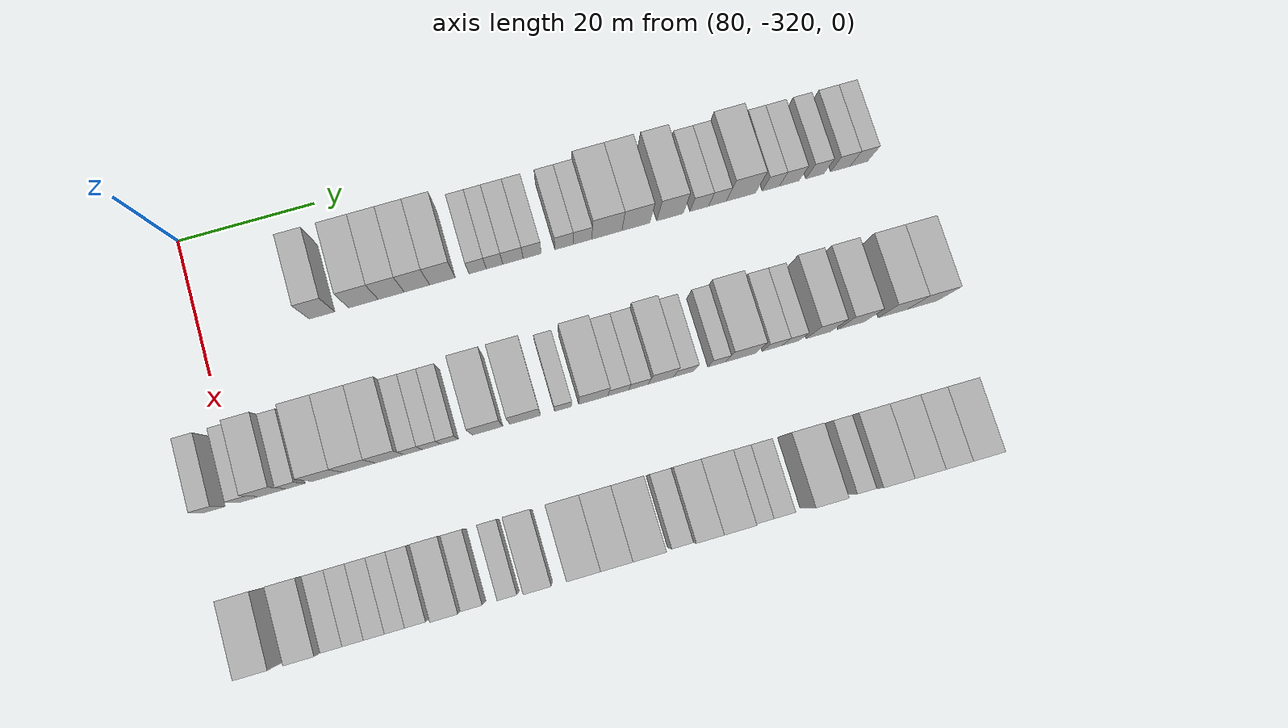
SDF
<sdf version="1.6">
 <world name="default">
  <model name="building_553">
   <static>1</static>
   <pose>91.0000 -302.9431 0 0.000000 0.000000 0.000000</pose>
   <link name="link">
    <pose>0 0 4.50 0 0 0</pose>
    <collision name="collision"><geometry><box><size>10.0000 3.6772 9.0000</size></box></geometry></collision>
    <visual name="visual">
     <cast_shadows>0</cast_shadows>
     <geometry><box><size>10.0000 3.6772 9.0000</size></box></geometry>
     <material>
      <script>
       <uri>model://HANNAS_wall/materials/scripts</uri>
       <uri>model://HANNAS_wall/materials/textures</uri>
       <name>vrc/HANNAS_wall</name>
      </script>
     </material>
    </visual>
   </link>
  </model>
  <model name="building_554">
   <static>1</static>
   <pose>91.0000 -296.9664 0 0.000000 0.000000 0.000000</pose>
   <link name="link">
    <pose>0 0 4.50 0 0 0</pose>
    <collision name="collision"><geometry><box><size>10.0000 4.2761 9.0000</size></box></geometry></collision>
    <visual name="visual">
     <cast_shadows>0</cast_shadows>
     <geometry><box><size>10.0000 4.2761 9.0000</size></box></geometry>
     <material>
      <script>
       <uri>model://HANNAS_wall/materials/scripts</uri>
       <uri>model://HANNAS_wall/materials/textures</uri>
       <name>vrc/HANNAS_wall</name>
      </script>
     </material>
    </visual>
   </link>
  </model>
  <model name="building_555">
   <static>1</static>
   <pose>91.0000 -292.9398 0 0.000000 0.000000 0.000000</pose>
   <link name="link">
    <pose>0 0 4.50 0 0 0</pose>
    <collision name="collision"><geometry><box><size>10.0000 3.7770 9.0000</size></box></geometry></collision>
    <visual name="visual">
     <cast_shadows>0</cast_shadows>
     <geometry><box><size>10.0000 3.7770 9.0000</size></box></geometry>
     <material>
      <script>
       <uri>model://HANNAS_wall/materials/scripts</uri>
       <uri>model://HANNAS_wall/materials/textures</uri>
       <name>vrc/HANNAS_wall</name>
      </script>
     </material>
    </visual>
   </link>
  </model>
  <model name="building_556">
   <static>1</static>
   <pose>91.0000 -289.2124 0 0.000000 0.000000 0.000000</pose>
   <link name="link">
    <pose>0 0 4.50 0 0 0</pose>
    <collision name="collision"><geometry><box><size>10.0000 3.6778 9.0000</size></box></geometry></collision>
    <visual name="visual">
     <cast_shadows>0</cast_shadows>
     <geometry><box><size>10.0000 3.6778 9.0000</size></box></geometry>
     <material>
      <script>
       <uri>model://HANNAS_wall/materials/scripts</uri>
       <uri>model://HANNAS_wall/materials/textures</uri>
       <name>vrc/HANNAS_wall</name>
      </script>
     </material>
    </visual>
   </link>
  </model>
  <model name="building_557">
   <static>1</static>
   <pose>91.0000 -285.5082 0 0.000000 0.000000 0.000000</pose>
   <link name="link">
    <pose>0 0 4.50 0 0 0</pose>
    <collision name="collision"><geometry><box><size>10.0000 3.7307 9.0000</size></box></geometry></collision>
    <visual name="visual">
     <cast_shadows>0</cast_shadows>
     <geometry><box><size>10.0000 3.7307 9.0000</size></box></geometry>
     <material>
      <script>
       <uri>model://HANNAS_wall/materials/scripts</uri>
       <uri>model://HANNAS_wall/materials/textures</uri>
       <name>vrc/HANNAS_wall</name>
      </script>
     </material>
    </visual>
   </link>
  </model>
  <model name="building_558">
   <static>1</static>
   <pose>91.0000 -280.3825 0 0.000000 0.000000 0.000000</pose>
   <link name="link">
    <pose>0 0 3.00 0 0 0</pose>
    <collision name="collision"><geometry><box><size>10.0000 2.5209 6.0000</size></box></geometry></collision>
    <visual name="visual">
     <cast_shadows>0</cast_shadows>
     <geometry><box><size>10.0000 2.5209 6.0000</size></box></geometry>
     <material>
      <script>
       <uri>model://HANNAS_wall/materials/scripts</uri>
       <uri>model://HANNAS_wall/materials/textures</uri>
       <name>vrc/HANNAS_wall</name>
      </script>
     </material>
    </visual>
   </link>
  </model>
  <model name="building_559">
   <static>1</static>
   <pose>91.0000 -277.9220 0 0.000000 0.000000 0.000000</pose>
   <link name="link">
    <pose>0 0 3.00 0 0 0</pose>
    <collision name="collision"><geometry><box><size>10.0000 2.4000 6.0000</size></box></geometry></collision>
    <visual name="visual">
     <cast_shadows>0</cast_shadows>
     <geometry><box><size>10.0000 2.4000 6.0000</size></box></geometry>
     <material>
      <script>
       <uri>model://HANNAS_wall/materials/scripts</uri>
       <uri>model://HANNAS_wall/materials/textures</uri>
       <name>vrc/HANNAS_wall</name>
      </script>
     </material>
    </visual>
   </link>
  </model>
  <model name="building_560">
   <static>1</static>
   <pose>91.0000 -275.2360 0 0.000000 0.000000 0.000000</pose>
   <link name="link">
    <pose>0 0 3.00 0 0 0</pose>
    <collision name="collision"><geometry><box><size>10.0000 2.9721 6.0000</size></box></geometry></collision>
    <visual name="visual">
     <cast_shadows>0</cast_shadows>
     <geometry><box><size>10.0000 2.9721 6.0000</size></box></geometry>
     <material>
      <script>
       <uri>model://HANNAS_wall/materials/scripts</uri>
       <uri>model://HANNAS_wall/materials/textures</uri>
       <name>vrc/HANNAS_wall</name>
      </script>
     </material>
    </visual>
   </link>
  </model>
  <model name="building_561">
   <static>1</static>
   <pose>91.0000 -272.4276 0 0.000000 0.000000 0.000000</pose>
   <link name="link">
    <pose>0 0 3.00 0 0 0</pose>
    <collision name="collision"><geometry><box><size>10.0000 2.6448 6.0000</size></box></geometry></collision>
    <visual name="visual">
     <cast_shadows>0</cast_shadows>
     <geometry><box><size>10.0000 2.6448 6.0000</size></box></geometry>
     <material>
      <script>
       <uri>model://HANNAS_wall/materials/scripts</uri>
       <uri>model://HANNAS_wall/materials/textures</uri>
       <name>vrc/HANNAS_wall</name>
      </script>
     </material>
    </visual>
   </link>
  </model>
  <model name="building_562">
   <static>1</static>
   <pose>91.0000 -267.7533 0 0.000000 0.000000 0.000000</pose>
   <link name="link">
    <pose>0 0 3.00 0 0 0</pose>
    <collision name="collision"><geometry><box><size>10.0000 2.7037 6.0000</size></box></geometry></collision>
    <visual name="visual">
     <cast_shadows>0</cast_shadows>
     <geometry><box><size>10.0000 2.7037 6.0000</size></box></geometry>
     <material>
      <script>
       <uri>model://HANNAS_wall/materials/scripts</uri>
       <uri>model://HANNAS_wall/materials/textures</uri>
       <name>vrc/HANNAS_wall</name>
      </script>
     </material>
    </visual>
   </link>
  </model>
  <model name="building_563">
   <static>1</static>
   <pose>91.0000 -265.0455 0 0.000000 0.000000 0.000000</pose>
   <link name="link">
    <pose>0 0 3.00 0 0 0</pose>
    <collision name="collision"><geometry><box><size>10.0000 2.7121 6.0000</size></box></geometry></collision>
    <visual name="visual">
     <cast_shadows>0</cast_shadows>
     <geometry><box><size>10.0000 2.7121 6.0000</size></box></geometry>
     <material>
      <script>
       <uri>model://HANNAS_wall/materials/scripts</uri>
       <uri>model://HANNAS_wall/materials/textures</uri>
       <name>vrc/HANNAS_wall</name>
      </script>
     </material>
    </visual>
   </link>
  </model>
  <model name="building_564">
   <static>1</static>
   <pose>91.0000 -261.4655 0 0.000000 0.000000 0.000000</pose>
   <link name="link">
    <pose>0 0 4.50 0 0 0</pose>
    <collision name="collision"><geometry><box><size>10.0000 4.4478 9.0000</size></box></geometry></collision>
    <visual name="visual">
     <cast_shadows>0</cast_shadows>
     <geometry><box><size>10.0000 4.4478 9.0000</size></box></geometry>
     <material>
      <script>
       <uri>model://HANNAS_wall/materials/scripts</uri>
       <uri>model://HANNAS_wall/materials/textures</uri>
       <name>vrc/HANNAS_wall</name>
      </script>
     </material>
    </visual>
   </link>
  </model>
  <model name="building_565">
   <static>1</static>
   <pose>91.0000 -257.1751 0 0.000000 0.000000 0.000000</pose>
   <link name="link">
    <pose>0 0 4.50 0 0 0</pose>
    <collision name="collision"><geometry><box><size>10.0000 4.1331 9.0000</size></box></geometry></collision>
    <visual name="visual">
     <cast_shadows>0</cast_shadows>
     <geometry><box><size>10.0000 4.1331 9.0000</size></box></geometry>
     <material>
      <script>
       <uri>model://HANNAS_wall/materials/scripts</uri>
       <uri>model://HANNAS_wall/materials/textures</uri>
       <name>vrc/HANNAS_wall</name>
      </script>
     </material>
    </visual>
   </link>
  </model>
  <model name="building_566">
   <static>1</static>
   <pose>91.0000 -252.1378 0 0.000000 0.000000 0.000000</pose>
   <link name="link">
    <pose>0 0 4.50 0 0 0</pose>
    <collision name="collision"><geometry><box><size>10.0000 3.9413 9.0000</size></box></geometry></collision>
    <visual name="visual">
     <cast_shadows>0</cast_shadows>
     <geometry><box><size>10.0000 3.9413 9.0000</size></box></geometry>
     <material>
      <script>
       <uri>model://HANNAS_wall/materials/scripts</uri>
       <uri>model://HANNAS_wall/materials/textures</uri>
       <name>vrc/HANNAS_wall</name>
      </script>
     </material>
    </visual>
   </link>
  </model>
  <model name="building_567">
   <static>1</static>
   <pose>91.0000 -247.7716 0 0.000000 0.000000 0.000000</pose>
   <link name="link">
    <pose>0 0 3.00 0 0 0</pose>
    <collision name="collision"><geometry><box><size>10.0000 2.7911 6.0000</size></box></geometry></collision>
    <visual name="visual">
     <cast_shadows>0</cast_shadows>
     <geometry><box><size>10.0000 2.7911 6.0000</size></box></geometry>
     <material>
      <script>
       <uri>model://HANNAS_wall/materials/scripts</uri>
       <uri>model://HANNAS_wall/materials/textures</uri>
       <name>vrc/HANNAS_wall</name>
      </script>
     </material>
    </visual>
   </link>
  </model>
  <model name="building_568">
   <static>1</static>
   <pose>91.0000 -245.0854 0 0.000000 0.000000 0.000000</pose>
   <link name="link">
    <pose>0 0 3.00 0 0 0</pose>
    <collision name="collision"><geometry><box><size>10.0000 2.5814 6.0000</size></box></geometry></collision>
    <visual name="visual">
     <cast_shadows>0</cast_shadows>
     <geometry><box><size>10.0000 2.5814 6.0000</size></box></geometry>
     <material>
      <script>
       <uri>model://HANNAS_wall/materials/scripts</uri>
       <uri>model://HANNAS_wall/materials/textures</uri>
       <name>vrc/HANNAS_wall</name>
      </script>
     </material>
    </visual>
   </link>
  </model>
  <model name="building_569">
   <static>1</static>
   <pose>91.0000 -241.6054 0 0.000000 0.000000 0.000000</pose>
   <link name="link">
    <pose>0 0 4.50 0 0 0</pose>
    <collision name="collision"><geometry><box><size>10.0000 4.3786 9.0000</size></box></geometry></collision>
    <visual name="visual">
     <cast_shadows>0</cast_shadows>
     <geometry><box><size>10.0000 4.3786 9.0000</size></box></geometry>
     <material>
      <script>
       <uri>model://HANNAS_wall/materials/scripts</uri>
       <uri>model://HANNAS_wall/materials/textures</uri>
       <name>vrc/HANNAS_wall</name>
      </script>
     </material>
    </visual>
   </link>
  </model>
  <model name="building_570">
   <static>1</static>
   <pose>91.0000 -237.1432 0 0.000000 0.000000 0.000000</pose>
   <link name="link">
    <pose>0 0 3.00 0 0 0</pose>
    <collision name="collision"><geometry><box><size>10.0000 2.5459 6.0000</size></box></geometry></collision>
    <visual name="visual">
     <cast_shadows>0</cast_shadows>
     <geometry><box><size>10.0000 2.5459 6.0000</size></box></geometry>
     <material>
      <script>
       <uri>model://HANNAS_wall/materials/scripts</uri>
       <uri>model://HANNAS_wall/materials/textures</uri>
       <name>vrc/HANNAS_wall</name>
      </script>
     </material>
    </visual>
   </link>
  </model>
  <model name="building_571">
   <static>1</static>
   <pose>91.0000 -234.3784 0 0.000000 0.000000 0.000000</pose>
   <link name="link">
    <pose>0 0 3.00 0 0 0</pose>
    <collision name="collision"><geometry><box><size>10.0000 2.9838 6.0000</size></box></geometry></collision>
    <visual name="visual">
     <cast_shadows>0</cast_shadows>
     <geometry><box><size>10.0000 2.9838 6.0000</size></box></geometry>
     <material>
      <script>
       <uri>model://HANNAS_wall/materials/scripts</uri>
       <uri>model://HANNAS_wall/materials/textures</uri>
       <name>vrc/HANNAS_wall</name>
      </script>
     </material>
    </visual>
   </link>
  </model>
  <model name="building_572">
   <static>1</static>
   <pose>91.0000 -230.5261 0 0.000000 0.000000 0.000000</pose>
   <link name="link">
    <pose>0 0 3.00 0 0 0</pose>
    <collision name="collision"><geometry><box><size>10.0000 2.7208 6.0000</size></box></geometry></collision>
    <visual name="visual">
     <cast_shadows>0</cast_shadows>
     <geometry><box><size>10.0000 2.7208 6.0000</size></box></geometry>
     <material>
      <script>
       <uri>model://HANNAS_wall/materials/scripts</uri>
       <uri>model://HANNAS_wall/materials/textures</uri>
       <name>vrc/HANNAS_wall</name>
      </script>
     </material>
    </visual>
   </link>
  </model>
  <model name="building_573">
   <static>1</static>
   <pose>91.0000 -226.7078 0 0.000000 0.000000 0.000000</pose>
   <link name="link">
    <pose>0 0 3.00 0 0 0</pose>
    <collision name="collision"><geometry><box><size>10.0000 2.9159 6.0000</size></box></geometry></collision>
    <visual name="visual">
     <cast_shadows>0</cast_shadows>
     <geometry><box><size>10.0000 2.9159 6.0000</size></box></geometry>
     <material>
      <script>
       <uri>model://HANNAS_wall/materials/scripts</uri>
       <uri>model://HANNAS_wall/materials/textures</uri>
       <name>vrc/HANNAS_wall</name>
      </script>
     </material>
    </visual>
   </link>
  </model>
  <model name="building_574">
   <static>1</static>
   <pose>91.0000 -223.9192 0 0.000000 0.000000 0.000000</pose>
   <link name="link">
    <pose>0 0 3.00 0 0 0</pose>
    <collision name="collision"><geometry><box><size>10.0000 2.6612 6.0000</size></box></geometry></collision>
    <visual name="visual">
     <cast_shadows>0</cast_shadows>
     <geometry><box><size>10.0000 2.6612 6.0000</size></box></geometry>
     <material>
      <script>
       <uri>model://HANNAS_wall/materials/scripts</uri>
       <uri>model://HANNAS_wall/materials/textures</uri>
       <name>vrc/HANNAS_wall</name>
      </script>
     </material>
    </visual>
   </link>
  </model>
  <model name="building_740">
   <static>1</static>
   <pose>113.0000 -323.5306 0 0.000000 0.000000 0.000000</pose>
   <link name="link">
    <pose>0 0 3.00 0 0 0</pose>
    <collision name="collision"><geometry><box><size>10.0000 2.8709 6.0000</size></box></geometry></collision>
    <visual name="visual">
     <cast_shadows>0</cast_shadows>
     <geometry><box><size>10.0000 2.8709 6.0000</size></box></geometry>
     <material>
      <script>
       <uri>model://HANNAS_wall/materials/scripts</uri>
       <uri>model://HANNAS_wall/materials/textures</uri>
       <name>vrc/HANNAS_wall</name>
      </script>
     </material>
    </visual>
   </link>
  </model>
  <model name="building_741">
   <static>1</static>
   <pose>113.0000 -318.6548 0 0.000000 0.000000 0.000000</pose>
   <link name="link">
    <pose>0 0 3.00 0 0 0</pose>
    <collision name="collision"><geometry><box><size>10.0000 2.8807 6.0000</size></box></geometry></collision>
    <visual name="visual">
     <cast_shadows>0</cast_shadows>
     <geometry><box><size>10.0000 2.8807 6.0000</size></box></geometry>
     <material>
      <script>
       <uri>model://HANNAS_wall/materials/scripts</uri>
       <uri>model://HANNAS_wall/materials/textures</uri>
       <name>vrc/HANNAS_wall</name>
      </script>
     </material>
    </visual>
   </link>
  </model>
  <model name="building_742">
   <static>1</static>
   <pose>113.0000 -315.3091 0 0.000000 0.000000 0.000000</pose>
   <link name="link">
    <pose>0 0 4.50 0 0 0</pose>
    <collision name="collision"><geometry><box><size>10.0000 3.8106 9.0000</size></box></geometry></collision>
    <visual name="visual">
     <cast_shadows>0</cast_shadows>
     <geometry><box><size>10.0000 3.8106 9.0000</size></box></geometry>
     <material>
      <script>
       <uri>model://HANNAS_wall/materials/scripts</uri>
       <uri>model://HANNAS_wall/materials/textures</uri>
       <name>vrc/HANNAS_wall</name>
      </script>
     </material>
    </visual>
   </link>
  </model>
  <model name="building_743">
   <static>1</static>
   <pose>113.0000 -312.1371 0 0.000000 0.000000 0.000000</pose>
   <link name="link">
    <pose>0 0 3.00 0 0 0</pose>
    <collision name="collision"><geometry><box><size>10.0000 2.5335 6.0000</size></box></geometry></collision>
    <visual name="visual">
     <cast_shadows>0</cast_shadows>
     <geometry><box><size>10.0000 2.5335 6.0000</size></box></geometry>
     <material>
      <script>
       <uri>model://HANNAS_wall/materials/scripts</uri>
       <uri>model://HANNAS_wall/materials/textures</uri>
       <name>vrc/HANNAS_wall</name>
      </script>
     </material>
    </visual>
   </link>
  </model>
  <model name="building_744">
   <static>1</static>
   <pose>113.0000 -307.6486 0 0.000000 0.000000 0.000000</pose>
   <link name="link">
    <pose>0 0 4.50 0 0 0</pose>
    <collision name="collision"><geometry><box><size>10.0000 4.4434 9.0000</size></box></geometry></collision>
    <visual name="visual">
     <cast_shadows>0</cast_shadows>
     <geometry><box><size>10.0000 4.4434 9.0000</size></box></geometry>
     <material>
      <script>
       <uri>model://HANNAS_wall/materials/scripts</uri>
       <uri>model://HANNAS_wall/materials/textures</uri>
       <name>vrc/HANNAS_wall</name>
      </script>
     </material>
    </visual>
   </link>
  </model>
  <model name="building_745">
   <static>1</static>
   <pose>113.0000 -303.1799 0 0.000000 0.000000 0.000000</pose>
   <link name="link">
    <pose>0 0 4.50 0 0 0</pose>
    <collision name="collision"><geometry><box><size>10.0000 4.4940 9.0000</size></box></geometry></collision>
    <visual name="visual">
     <cast_shadows>0</cast_shadows>
     <geometry><box><size>10.0000 4.4940 9.0000</size></box></geometry>
     <material>
      <script>
       <uri>model://HANNAS_wall/materials/scripts</uri>
       <uri>model://HANNAS_wall/materials/textures</uri>
       <name>vrc/HANNAS_wall</name>
      </script>
     </material>
    </visual>
   </link>
  </model>
  <model name="building_746">
   <static>1</static>
   <pose>113.0000 -298.9146 0 0.000000 0.000000 0.000000</pose>
   <link name="link">
    <pose>0 0 4.50 0 0 0</pose>
    <collision name="collision"><geometry><box><size>10.0000 4.0366 9.0000</size></box></geometry></collision>
    <visual name="visual">
     <cast_shadows>0</cast_shadows>
     <geometry><box><size>10.0000 4.0366 9.0000</size></box></geometry>
     <material>
      <script>
       <uri>model://HANNAS_wall/materials/scripts</uri>
       <uri>model://HANNAS_wall/materials/textures</uri>
       <name>vrc/HANNAS_wall</name>
      </script>
     </material>
    </visual>
   </link>
  </model>
  <model name="building_747">
   <static>1</static>
   <pose>113.0000 -295.6043 0 0.000000 0.000000 0.000000</pose>
   <link name="link">
    <pose>0 0 3.00 0 0 0</pose>
    <collision name="collision"><geometry><box><size>10.0000 2.5842 6.0000</size></box></geometry></collision>
    <visual name="visual">
     <cast_shadows>0</cast_shadows>
     <geometry><box><size>10.0000 2.5842 6.0000</size></box></geometry>
     <material>
      <script>
       <uri>model://HANNAS_wall/materials/scripts</uri>
       <uri>model://HANNAS_wall/materials/textures</uri>
       <name>vrc/HANNAS_wall</name>
      </script>
     </material>
    </visual>
   </link>
  </model>
  <model name="building_748">
   <static>1</static>
   <pose>113.0000 -293.0030 0 0.000000 0.000000 0.000000</pose>
   <link name="link">
    <pose>0 0 3.00 0 0 0</pose>
    <collision name="collision"><geometry><box><size>10.0000 2.6183 6.0000</size></box></geometry></collision>
    <visual name="visual">
     <cast_shadows>0</cast_shadows>
     <geometry><box><size>10.0000 2.6183 6.0000</size></box></geometry>
     <material>
      <script>
       <uri>model://HANNAS_wall/materials/scripts</uri>
       <uri>model://HANNAS_wall/materials/textures</uri>
       <name>vrc/HANNAS_wall</name>
      </script>
     </material>
    </visual>
   </link>
  </model>
  <model name="building_749">
   <static>1</static>
   <pose>113.0000 -290.4417 0 0.000000 0.000000 0.000000</pose>
   <link name="link">
    <pose>0 0 3.00 0 0 0</pose>
    <collision name="collision"><geometry><box><size>10.0000 2.5043 6.0000</size></box></geometry></collision>
    <visual name="visual">
     <cast_shadows>0</cast_shadows>
     <geometry><box><size>10.0000 2.5043 6.0000</size></box></geometry>
     <material>
      <script>
       <uri>model://HANNAS_wall/materials/scripts</uri>
       <uri>model://HANNAS_wall/materials/textures</uri>
       <name>vrc/HANNAS_wall</name>
      </script>
     </material>
    </visual>
   </link>
  </model>
  <model name="building_750">
   <static>1</static>
   <pose>113.0000 -285.0229 0 0.000000 0.000000 0.000000</pose>
   <link name="link">
    <pose>0 0 4.50 0 0 0</pose>
    <collision name="collision"><geometry><box><size>10.0000 4.3333 9.0000</size></box></geometry></collision>
    <visual name="visual">
     <cast_shadows>0</cast_shadows>
     <geometry><box><size>10.0000 4.3333 9.0000</size></box></geometry>
     <material>
      <script>
       <uri>model://HANNAS_wall/materials/scripts</uri>
       <uri>model://HANNAS_wall/materials/textures</uri>
       <name>vrc/HANNAS_wall</name>
      </script>
     </material>
    </visual>
   </link>
  </model>
  <model name="building_751">
   <static>1</static>
   <pose>113.0000 -279.6600 0 0.000000 0.000000 0.000000</pose>
   <link name="link">
    <pose>0 0 4.50 0 0 0</pose>
    <collision name="collision"><geometry><box><size>10.0000 4.3926 9.0000</size></box></geometry></collision>
    <visual name="visual">
     <cast_shadows>0</cast_shadows>
     <geometry><box><size>10.0000 4.3926 9.0000</size></box></geometry>
     <material>
      <script>
       <uri>model://HANNAS_wall/materials/scripts</uri>
       <uri>model://HANNAS_wall/materials/textures</uri>
       <name>vrc/HANNAS_wall</name>
      </script>
     </material>
    </visual>
   </link>
  </model>
  <model name="building_752">
   <static>1</static>
   <pose>113.0000 -274.2361 0 0.000000 0.000000 0.000000</pose>
   <link name="link">
    <pose>0 0 3.00 0 0 0</pose>
    <collision name="collision"><geometry><box><size>10.0000 2.4552 6.0000</size></box></geometry></collision>
    <visual name="visual">
     <cast_shadows>0</cast_shadows>
     <geometry><box><size>10.0000 2.4552 6.0000</size></box></geometry>
     <material>
      <script>
       <uri>model://HANNAS_wall/materials/scripts</uri>
       <uri>model://HANNAS_wall/materials/textures</uri>
       <name>vrc/HANNAS_wall</name>
      </script>
     </material>
    </visual>
   </link>
  </model>
  <model name="building_753">
   <static>1</static>
   <pose>113.0000 -269.9123 0 0.000000 0.000000 0.000000</pose>
   <link name="link">
    <pose>0 0 4.50 0 0 0</pose>
    <collision name="collision"><geometry><box><size>10.0000 4.1924 9.0000</size></box></geometry></collision>
    <visual name="visual">
     <cast_shadows>0</cast_shadows>
     <geometry><box><size>10.0000 4.1924 9.0000</size></box></geometry>
     <material>
      <script>
       <uri>model://HANNAS_wall/materials/scripts</uri>
       <uri>model://HANNAS_wall/materials/textures</uri>
       <name>vrc/HANNAS_wall</name>
      </script>
     </material>
    </visual>
   </link>
  </model>
  <model name="building_754">
   <static>1</static>
   <pose>113.0000 -266.3188 0 0.000000 0.000000 0.000000</pose>
   <link name="link">
    <pose>0 0 3.00 0 0 0</pose>
    <collision name="collision"><geometry><box><size>10.0000 2.9945 6.0000</size></box></geometry></collision>
    <visual name="visual">
     <cast_shadows>0</cast_shadows>
     <geometry><box><size>10.0000 2.9945 6.0000</size></box></geometry>
     <material>
      <script>
       <uri>model://HANNAS_wall/materials/scripts</uri>
       <uri>model://HANNAS_wall/materials/textures</uri>
       <name>vrc/HANNAS_wall</name>
      </script>
     </material>
    </visual>
   </link>
  </model>
  <model name="building_755">
   <static>1</static>
   <pose>113.0000 -263.4084 0 0.000000 0.000000 0.000000</pose>
   <link name="link">
    <pose>0 0 3.00 0 0 0</pose>
    <collision name="collision"><geometry><box><size>10.0000 2.8263 6.0000</size></box></geometry></collision>
    <visual name="visual">
     <cast_shadows>0</cast_shadows>
     <geometry><box><size>10.0000 2.8263 6.0000</size></box></geometry>
     <material>
      <script>
       <uri>model://HANNAS_wall/materials/scripts</uri>
       <uri>model://HANNAS_wall/materials/textures</uri>
       <name>vrc/HANNAS_wall</name>
      </script>
     </material>
    </visual>
   </link>
  </model>
  <model name="building_756">
   <static>1</static>
   <pose>113.0000 -260.1730 0 0.000000 0.000000 0.000000</pose>
   <link name="link">
    <pose>0 0 4.50 0 0 0</pose>
    <collision name="collision"><geometry><box><size>10.0000 3.6446 9.0000</size></box></geometry></collision>
    <visual name="visual">
     <cast_shadows>0</cast_shadows>
     <geometry><box><size>10.0000 3.6446 9.0000</size></box></geometry>
     <material>
      <script>
       <uri>model://HANNAS_wall/materials/scripts</uri>
       <uri>model://HANNAS_wall/materials/textures</uri>
       <name>vrc/HANNAS_wall</name>
      </script>
     </material>
    </visual>
   </link>
  </model>
  <model name="building_757">
   <static>1</static>
   <pose>113.0000 -256.8527 0 0.000000 0.000000 0.000000</pose>
   <link name="link">
    <pose>0 0 3.00 0 0 0</pose>
    <collision name="collision"><geometry><box><size>10.0000 2.9959 6.0000</size></box></geometry></collision>
    <visual name="visual">
     <cast_shadows>0</cast_shadows>
     <geometry><box><size>10.0000 2.9959 6.0000</size></box></geometry>
     <material>
      <script>
       <uri>model://HANNAS_wall/materials/scripts</uri>
       <uri>model://HANNAS_wall/materials/textures</uri>
       <name>vrc/HANNAS_wall</name>
      </script>
     </material>
    </visual>
   </link>
  </model>
  <model name="building_758">
   <static>1</static>
   <pose>113.0000 -252.1264 0 0.000000 0.000000 0.000000</pose>
   <link name="link">
    <pose>0 0 3.00 0 0 0</pose>
    <collision name="collision"><geometry><box><size>10.0000 2.4566 6.0000</size></box></geometry></collision>
    <visual name="visual">
     <cast_shadows>0</cast_shadows>
     <geometry><box><size>10.0000 2.4566 6.0000</size></box></geometry>
     <material>
      <script>
       <uri>model://HANNAS_wall/materials/scripts</uri>
       <uri>model://HANNAS_wall/materials/textures</uri>
       <name>vrc/HANNAS_wall</name>
      </script>
     </material>
    </visual>
   </link>
  </model>
  <model name="building_759">
   <static>1</static>
   <pose>113.0000 -248.6736 0 0.000000 0.000000 0.000000</pose>
   <link name="link">
    <pose>0 0 4.50 0 0 0</pose>
    <collision name="collision"><geometry><box><size>10.0000 4.4491 9.0000</size></box></geometry></collision>
    <visual name="visual">
     <cast_shadows>0</cast_shadows>
     <geometry><box><size>10.0000 4.4491 9.0000</size></box></geometry>
     <material>
      <script>
       <uri>model://HANNAS_wall/materials/scripts</uri>
       <uri>model://HANNAS_wall/materials/textures</uri>
       <name>vrc/HANNAS_wall</name>
      </script>
     </material>
    </visual>
   </link>
  </model>
  <model name="building_760">
   <static>1</static>
   <pose>113.0000 -243.9954 0 0.000000 0.000000 0.000000</pose>
   <link name="link">
    <pose>0 0 3.00 0 0 0</pose>
    <collision name="collision"><geometry><box><size>10.0000 2.9074 6.0000</size></box></geometry></collision>
    <visual name="visual">
     <cast_shadows>0</cast_shadows>
     <geometry><box><size>10.0000 2.9074 6.0000</size></box></geometry>
     <material>
      <script>
       <uri>model://HANNAS_wall/materials/scripts</uri>
       <uri>model://HANNAS_wall/materials/textures</uri>
       <name>vrc/HANNAS_wall</name>
      </script>
     </material>
    </visual>
   </link>
  </model>
  <model name="building_761">
   <static>1</static>
   <pose>113.0000 -241.2912 0 0.000000 0.000000 0.000000</pose>
   <link name="link">
    <pose>0 0 3.00 0 0 0</pose>
    <collision name="collision"><geometry><box><size>10.0000 2.5009 6.0000</size></box></geometry></collision>
    <visual name="visual">
     <cast_shadows>0</cast_shadows>
     <geometry><box><size>10.0000 2.5009 6.0000</size></box></geometry>
     <material>
      <script>
       <uri>model://HANNAS_wall/materials/scripts</uri>
       <uri>model://HANNAS_wall/materials/textures</uri>
       <name>vrc/HANNAS_wall</name>
      </script>
     </material>
    </visual>
   </link>
  </model>
  <model name="building_762">
   <static>1</static>
   <pose>113.0000 -237.2115 0 0.000000 0.000000 0.000000</pose>
   <link name="link">
    <pose>0 0 4.50 0 0 0</pose>
    <collision name="collision"><geometry><box><size>10.0000 3.6586 9.0000</size></box></geometry></collision>
    <visual name="visual">
     <cast_shadows>0</cast_shadows>
     <geometry><box><size>10.0000 3.6586 9.0000</size></box></geometry>
     <material>
      <script>
       <uri>model://HANNAS_wall/materials/scripts</uri>
       <uri>model://HANNAS_wall/materials/textures</uri>
       <name>vrc/HANNAS_wall</name>
      </script>
     </material>
    </visual>
   </link>
  </model>
  <model name="building_763">
   <static>1</static>
   <pose>113.0000 -232.4154 0 0.000000 0.000000 0.000000</pose>
   <link name="link">
    <pose>0 0 4.50 0 0 0</pose>
    <collision name="collision"><geometry><box><size>10.0000 3.9336 9.0000</size></box></geometry></collision>
    <visual name="visual">
     <cast_shadows>0</cast_shadows>
     <geometry><box><size>10.0000 3.9336 9.0000</size></box></geometry>
     <material>
      <script>
       <uri>model://HANNAS_wall/materials/scripts</uri>
       <uri>model://HANNAS_wall/materials/textures</uri>
       <name>vrc/HANNAS_wall</name>
      </script>
     </material>
    </visual>
   </link>
  </model>
  <model name="building_764">
   <static>1</static>
   <pose>113.0000 -226.2832 0 0.000000 0.000000 0.000000</pose>
   <link name="link">
    <pose>0 0 4.50 0 0 0</pose>
    <collision name="collision"><geometry><box><size>10.0000 4.3308 9.0000</size></box></geometry></collision>
    <visual name="visual">
     <cast_shadows>0</cast_shadows>
     <geometry><box><size>10.0000 4.3308 9.0000</size></box></geometry>
     <material>
      <script>
       <uri>model://HANNAS_wall/materials/scripts</uri>
       <uri>model://HANNAS_wall/materials/textures</uri>
       <name>vrc/HANNAS_wall</name>
      </script>
     </material>
    </visual>
   </link>
  </model>
  <model name="building_765">
   <static>1</static>
   <pose>113.0000 -221.9089 0 0.000000 0.000000 0.000000</pose>
   <link name="link">
    <pose>0 0 4.50 0 0 0</pose>
    <collision name="collision"><geometry><box><size>10.0000 4.4179 9.0000</size></box></geometry></collision>
    <visual name="visual">
     <cast_shadows>0</cast_shadows>
     <geometry><box><size>10.0000 4.4179 9.0000</size></box></geometry>
     <material>
      <script>
       <uri>model://HANNAS_wall/materials/scripts</uri>
       <uri>model://HANNAS_wall/materials/textures</uri>
       <name>vrc/HANNAS_wall</name>
      </script>
     </material>
    </visual>
   </link>
  </model>
  <model name="building_929">
   <static>1</static>
   <pose>135.0000 -321.0241 0 0.000000 0.000000 0.000000</pose>
   <link name="link">
    <pose>0 0 4.50 0 0 0</pose>
    <collision name="collision"><geometry><box><size>10.0000 4.4669 9.0000</size></box></geometry></collision>
    <visual name="visual">
     <cast_shadows>0</cast_shadows>
     <geometry><box><size>10.0000 4.4669 9.0000</size></box></geometry>
     <material>
      <script>
       <uri>model://HANNAS_wall/materials/scripts</uri>
       <uri>model://HANNAS_wall/materials/textures</uri>
       <name>vrc/HANNAS_wall</name>
      </script>
     </material>
    </visual>
   </link>
  </model>
  <model name="building_930">
   <static>1</static>
   <pose>135.0000 -314.8017 0 0.000000 0.000000 0.000000</pose>
   <link name="link">
    <pose>0 0 4.50 0 0 0</pose>
    <collision name="collision"><geometry><box><size>10.0000 3.9778 9.0000</size></box></geometry></collision>
    <visual name="visual">
     <cast_shadows>0</cast_shadows>
     <geometry><box><size>10.0000 3.9778 9.0000</size></box></geometry>
     <material>
      <script>
       <uri>model://HANNAS_wall/materials/scripts</uri>
       <uri>model://HANNAS_wall/materials/textures</uri>
       <name>vrc/HANNAS_wall</name>
      </script>
     </material>
    </visual>
   </link>
  </model>
  <model name="building_931">
   <static>1</static>
   <pose>135.0000 -311.3652 0 0.000000 0.000000 0.000000</pose>
   <link name="link">
    <pose>0 0 3.00 0 0 0</pose>
    <collision name="collision"><geometry><box><size>10.0000 2.8953 6.0000</size></box></geometry></collision>
    <visual name="visual">
     <cast_shadows>0</cast_shadows>
     <geometry><box><size>10.0000 2.8953 6.0000</size></box></geometry>
     <material>
      <script>
       <uri>model://HANNAS_wall/materials/scripts</uri>
       <uri>model://HANNAS_wall/materials/textures</uri>
       <name>vrc/HANNAS_wall</name>
      </script>
     </material>
    </visual>
   </link>
  </model>
  <model name="building_932">
   <static>1</static>
   <pose>135.0000 -308.5071 0 0.000000 0.000000 0.000000</pose>
   <link name="link">
    <pose>0 0 3.00 0 0 0</pose>
    <collision name="collision"><geometry><box><size>10.0000 2.8209 6.0000</size></box></geometry></collision>
    <visual name="visual">
     <cast_shadows>0</cast_shadows>
     <geometry><box><size>10.0000 2.8209 6.0000</size></box></geometry>
     <material>
      <script>
       <uri>model://HANNAS_wall/materials/scripts</uri>
       <uri>model://HANNAS_wall/materials/textures</uri>
       <name>vrc/HANNAS_wall</name>
      </script>
     </material>
    </visual>
   </link>
  </model>
  <model name="building_933">
   <static>1</static>
   <pose>135.0000 -305.7184 0 0.000000 0.000000 0.000000</pose>
   <link name="link">
    <pose>0 0 3.00 0 0 0</pose>
    <collision name="collision"><geometry><box><size>10.0000 2.7564 6.0000</size></box></geometry></collision>
    <visual name="visual">
     <cast_shadows>0</cast_shadows>
     <geometry><box><size>10.0000 2.7564 6.0000</size></box></geometry>
     <material>
      <script>
       <uri>model://HANNAS_wall/materials/scripts</uri>
       <uri>model://HANNAS_wall/materials/textures</uri>
       <name>vrc/HANNAS_wall</name>
      </script>
     </material>
    </visual>
   </link>
  </model>
  <model name="building_934">
   <static>1</static>
   <pose>135.0000 -303.0051 0 0.000000 0.000000 0.000000</pose>
   <link name="link">
    <pose>0 0 3.00 0 0 0</pose>
    <collision name="collision"><geometry><box><size>10.0000 2.6702 6.0000</size></box></geometry></collision>
    <visual name="visual">
     <cast_shadows>0</cast_shadows>
     <geometry><box><size>10.0000 2.6702 6.0000</size></box></geometry>
     <material>
      <script>
       <uri>model://HANNAS_wall/materials/scripts</uri>
       <uri>model://HANNAS_wall/materials/textures</uri>
       <name>vrc/HANNAS_wall</name>
      </script>
     </material>
    </visual>
   </link>
  </model>
  <model name="building_935">
   <static>1</static>
   <pose>135.0000 -300.2838 0 0.000000 0.000000 0.000000</pose>
   <link name="link">
    <pose>0 0 3.00 0 0 0</pose>
    <collision name="collision"><geometry><box><size>10.0000 2.7723 6.0000</size></box></geometry></collision>
    <visual name="visual">
     <cast_shadows>0</cast_shadows>
     <geometry><box><size>10.0000 2.7723 6.0000</size></box></geometry>
     <material>
      <script>
       <uri>model://HANNAS_wall/materials/scripts</uri>
       <uri>model://HANNAS_wall/materials/textures</uri>
       <name>vrc/HANNAS_wall</name>
      </script>
     </material>
    </visual>
   </link>
  </model>
  <model name="building_936">
   <static>1</static>
   <pose>135.0000 -296.0834 0 0.000000 0.000000 0.000000</pose>
   <link name="link">
    <pose>0 0 4.50 0 0 0</pose>
    <collision name="collision"><geometry><box><size>10.0000 3.6285 9.0000</size></box></geometry></collision>
    <visual name="visual">
     <cast_shadows>0</cast_shadows>
     <geometry><box><size>10.0000 3.6285 9.0000</size></box></geometry>
     <material>
      <script>
       <uri>model://HANNAS_wall/materials/scripts</uri>
       <uri>model://HANNAS_wall/materials/textures</uri>
       <name>vrc/HANNAS_wall</name>
      </script>
     </material>
    </visual>
   </link>
  </model>
  <model name="building_937">
   <static>1</static>
   <pose>135.0000 -292.8264 0 0.000000 0.000000 0.000000</pose>
   <link name="link">
    <pose>0 0 3.00 0 0 0</pose>
    <collision name="collision"><geometry><box><size>10.0000 2.8855 6.0000</size></box></geometry></collision>
    <visual name="visual">
     <cast_shadows>0</cast_shadows>
     <geometry><box><size>10.0000 2.8855 6.0000</size></box></geometry>
     <material>
      <script>
       <uri>model://HANNAS_wall/materials/scripts</uri>
       <uri>model://HANNAS_wall/materials/textures</uri>
       <name>vrc/HANNAS_wall</name>
      </script>
     </material>
    </visual>
   </link>
  </model>
  <model name="building_938">
   <static>1</static>
   <pose>135.0000 -288.0678 0 0.000000 0.000000 0.000000</pose>
   <link name="link">
    <pose>0 0 3.00 0 0 0</pose>
    <collision name="collision"><geometry><box><size>10.0000 2.6316 6.0000</size></box></geometry></collision>
    <visual name="visual">
     <cast_shadows>0</cast_shadows>
     <geometry><box><size>10.0000 2.6316 6.0000</size></box></geometry>
     <material>
      <script>
       <uri>model://HANNAS_wall/materials/scripts</uri>
       <uri>model://HANNAS_wall/materials/textures</uri>
       <name>vrc/HANNAS_wall</name>
      </script>
     </material>
    </visual>
   </link>
  </model>
  <model name="building_939">
   <static>1</static>
   <pose>135.0000 -283.9204 0 0.000000 0.000000 0.000000</pose>
   <link name="link">
    <pose>0 0 4.50 0 0 0</pose>
    <collision name="collision"><geometry><box><size>10.0000 3.6632 9.0000</size></box></geometry></collision>
    <visual name="visual">
     <cast_shadows>0</cast_shadows>
     <geometry><box><size>10.0000 3.6632 9.0000</size></box></geometry>
     <material>
      <script>
       <uri>model://HANNAS_wall/materials/scripts</uri>
       <uri>model://HANNAS_wall/materials/textures</uri>
       <name>vrc/HANNAS_wall</name>
      </script>
     </material>
    </visual>
   </link>
  </model>
  <model name="building_940">
   <static>1</static>
   <pose>135.0000 -277.8528 0 0.000000 0.000000 0.000000</pose>
   <link name="link">
    <pose>0 0 4.50 0 0 0</pose>
    <collision name="collision"><geometry><box><size>10.0000 4.4720 9.0000</size></box></geometry></collision>
    <visual name="visual">
     <cast_shadows>0</cast_shadows>
     <geometry><box><size>10.0000 4.4720 9.0000</size></box></geometry>
     <material>
      <script>
       <uri>model://HANNAS_wall/materials/scripts</uri>
       <uri>model://HANNAS_wall/materials/textures</uri>
       <name>vrc/HANNAS_wall</name>
      </script>
     </material>
    </visual>
   </link>
  </model>
  <model name="building_941">
   <static>1</static>
   <pose>135.0000 -273.4835 0 0.000000 0.000000 0.000000</pose>
   <link name="link">
    <pose>0 0 4.50 0 0 0</pose>
    <collision name="collision"><geometry><box><size>10.0000 4.2665 9.0000</size></box></geometry></collision>
    <visual name="visual">
     <cast_shadows>0</cast_shadows>
     <geometry><box><size>10.0000 4.2665 9.0000</size></box></geometry>
     <material>
      <script>
       <uri>model://HANNAS_wall/materials/scripts</uri>
       <uri>model://HANNAS_wall/materials/textures</uri>
       <name>vrc/HANNAS_wall</name>
      </script>
     </material>
    </visual>
   </link>
  </model>
  <model name="building_942">
   <static>1</static>
   <pose>135.0000 -269.1369 0 0.000000 0.000000 0.000000</pose>
   <link name="link">
    <pose>0 0 4.50 0 0 0</pose>
    <collision name="collision"><geometry><box><size>10.0000 4.4267 9.0000</size></box></geometry></collision>
    <visual name="visual">
     <cast_shadows>0</cast_shadows>
     <geometry><box><size>10.0000 4.4267 9.0000</size></box></geometry>
     <material>
      <script>
       <uri>model://HANNAS_wall/materials/scripts</uri>
       <uri>model://HANNAS_wall/materials/textures</uri>
       <name>vrc/HANNAS_wall</name>
      </script>
     </material>
    </visual>
   </link>
  </model>
  <model name="building_943">
   <static>1</static>
   <pose>135.0000 -264.4570 0 0.000000 0.000000 0.000000</pose>
   <link name="link">
    <pose>0 0 3.00 0 0 0</pose>
    <collision name="collision"><geometry><box><size>10.0000 2.9331 6.0000</size></box></geometry></collision>
    <visual name="visual">
     <cast_shadows>0</cast_shadows>
     <geometry><box><size>10.0000 2.9331 6.0000</size></box></geometry>
     <material>
      <script>
       <uri>model://HANNAS_wall/materials/scripts</uri>
       <uri>model://HANNAS_wall/materials/textures</uri>
       <name>vrc/HANNAS_wall</name>
      </script>
     </material>
    </visual>
   </link>
  </model>
  <model name="building_944">
   <static>1</static>
   <pose>135.0000 -261.1315 0 0.000000 0.000000 0.000000</pose>
   <link name="link">
    <pose>0 0 4.50 0 0 0</pose>
    <collision name="collision"><geometry><box><size>10.0000 3.7179 9.0000</size></box></geometry></collision>
    <visual name="visual">
     <cast_shadows>0</cast_shadows>
     <geometry><box><size>10.0000 3.7179 9.0000</size></box></geometry>
     <material>
      <script>
       <uri>model://HANNAS_wall/materials/scripts</uri>
       <uri>model://HANNAS_wall/materials/textures</uri>
       <name>vrc/HANNAS_wall</name>
      </script>
     </material>
    </visual>
   </link>
  </model>
  <model name="building_945">
   <static>1</static>
   <pose>135.0000 -257.1116 0 0.000000 0.000000 0.000000</pose>
   <link name="link">
    <pose>0 0 4.50 0 0 0</pose>
    <collision name="collision"><geometry><box><size>10.0000 4.3219 9.0000</size></box></geometry></collision>
    <visual name="visual">
     <cast_shadows>0</cast_shadows>
     <geometry><box><size>10.0000 4.3219 9.0000</size></box></geometry>
     <material>
      <script>
       <uri>model://HANNAS_wall/materials/scripts</uri>
       <uri>model://HANNAS_wall/materials/textures</uri>
       <name>vrc/HANNAS_wall</name>
      </script>
     </material>
    </visual>
   </link>
  </model>
  <model name="building_946">
   <static>1</static>
   <pose>135.0000 -253.4877 0 0.000000 0.000000 0.000000</pose>
   <link name="link">
    <pose>0 0 3.00 0 0 0</pose>
    <collision name="collision"><geometry><box><size>10.0000 2.9259 6.0000</size></box></geometry></collision>
    <visual name="visual">
     <cast_shadows>0</cast_shadows>
     <geometry><box><size>10.0000 2.9259 6.0000</size></box></geometry>
     <material>
      <script>
       <uri>model://HANNAS_wall/materials/scripts</uri>
       <uri>model://HANNAS_wall/materials/textures</uri>
       <name>vrc/HANNAS_wall</name>
      </script>
     </material>
    </visual>
   </link>
  </model>
  <model name="building_947">
   <static>1</static>
   <pose>135.0000 -250.5502 0 0.000000 0.000000 0.000000</pose>
   <link name="link">
    <pose>0 0 3.00 0 0 0</pose>
    <collision name="collision"><geometry><box><size>10.0000 2.9493 6.0000</size></box></geometry></collision>
    <visual name="visual">
     <cast_shadows>0</cast_shadows>
     <geometry><box><size>10.0000 2.9493 6.0000</size></box></geometry>
     <material>
      <script>
       <uri>model://HANNAS_wall/materials/scripts</uri>
       <uri>model://HANNAS_wall/materials/textures</uri>
       <name>vrc/HANNAS_wall</name>
      </script>
     </material>
    </visual>
   </link>
  </model>
  <model name="building_948">
   <static>1</static>
   <pose>135.0000 -244.8538 0 0.000000 0.000000 0.000000</pose>
   <link name="link">
    <pose>0 0 4.50 0 0 0</pose>
    <collision name="collision"><geometry><box><size>10.0000 4.4435 9.0000</size></box></geometry></collision>
    <visual name="visual">
     <cast_shadows>0</cast_shadows>
     <geometry><box><size>10.0000 4.4435 9.0000</size></box></geometry>
     <material>
      <script>
       <uri>model://HANNAS_wall/materials/scripts</uri>
       <uri>model://HANNAS_wall/materials/textures</uri>
       <name>vrc/HANNAS_wall</name>
      </script>
     </material>
    </visual>
   </link>
  </model>
  <model name="building_949">
   <static>1</static>
   <pose>135.0000 -239.3161 0 0.000000 0.000000 0.000000</pose>
   <link name="link">
    <pose>0 0 3.00 0 0 0</pose>
    <collision name="collision"><geometry><box><size>10.0000 2.6318 6.0000</size></box></geometry></collision>
    <visual name="visual">
     <cast_shadows>0</cast_shadows>
     <geometry><box><size>10.0000 2.6318 6.0000</size></box></geometry>
     <material>
      <script>
       <uri>model://HANNAS_wall/materials/scripts</uri>
       <uri>model://HANNAS_wall/materials/textures</uri>
       <name>vrc/HANNAS_wall</name>
      </script>
     </material>
    </visual>
   </link>
  </model>
  <model name="building_950">
   <static>1</static>
   <pose>135.0000 -235.8851 0 0.000000 0.000000 0.000000</pose>
   <link name="link">
    <pose>0 0 4.50 0 0 0</pose>
    <collision name="collision"><geometry><box><size>10.0000 4.2302 9.0000</size></box></geometry></collision>
    <visual name="visual">
     <cast_shadows>0</cast_shadows>
     <geometry><box><size>10.0000 4.2302 9.0000</size></box></geometry>
     <material>
      <script>
       <uri>model://HANNAS_wall/materials/scripts</uri>
       <uri>model://HANNAS_wall/materials/textures</uri>
       <name>vrc/HANNAS_wall</name>
      </script>
     </material>
    </visual>
   </link>
  </model>
  <model name="building_951">
   <static>1</static>
   <pose>135.0000 -231.6832 0 0.000000 0.000000 0.000000</pose>
   <link name="link">
    <pose>0 0 4.50 0 0 0</pose>
    <collision name="collision"><geometry><box><size>10.0000 4.1737 9.0000</size></box></geometry></collision>
    <visual name="visual">
     <cast_shadows>0</cast_shadows>
     <geometry><box><size>10.0000 4.1737 9.0000</size></box></geometry>
     <material>
      <script>
       <uri>model://HANNAS_wall/materials/scripts</uri>
       <uri>model://HANNAS_wall/materials/textures</uri>
       <name>vrc/HANNAS_wall</name>
      </script>
     </material>
    </visual>
   </link>
  </model>
  <model name="building_952">
   <static>1</static>
   <pose>135.0000 -227.7433 0 0.000000 0.000000 0.000000</pose>
   <link name="link">
    <pose>0 0 4.50 0 0 0</pose>
    <collision name="collision"><geometry><box><size>10.0000 3.7063 9.0000</size></box></geometry></collision>
    <visual name="visual">
     <cast_shadows>0</cast_shadows>
     <geometry><box><size>10.0000 3.7063 9.0000</size></box></geometry>
     <material>
      <script>
       <uri>model://HANNAS_wall/materials/scripts</uri>
       <uri>model://HANNAS_wall/materials/textures</uri>
       <name>vrc/HANNAS_wall</name>
      </script>
     </material>
    </visual>
   </link>
  </model>
  <model name="building_953">
   <static>1</static>
   <pose>135.0000 -223.7065 0 0.000000 0.000000 0.000000</pose>
   <link name="link">
    <pose>0 0 4.50 0 0 0</pose>
    <collision name="collision"><geometry><box><size>10.0000 4.3672 9.0000</size></box></geometry></collision>
    <visual name="visual">
     <cast_shadows>0</cast_shadows>
     <geometry><box><size>10.0000 4.3672 9.0000</size></box></geometry>
     <material>
      <script>
       <uri>model://HANNAS_wall/materials/scripts</uri>
       <uri>model://HANNAS_wall/materials/textures</uri>
       <name>vrc/HANNAS_wall</name>
      </script>
     </material>
    </visual>
   </link>
  </model>
 </world>
</sdf>
